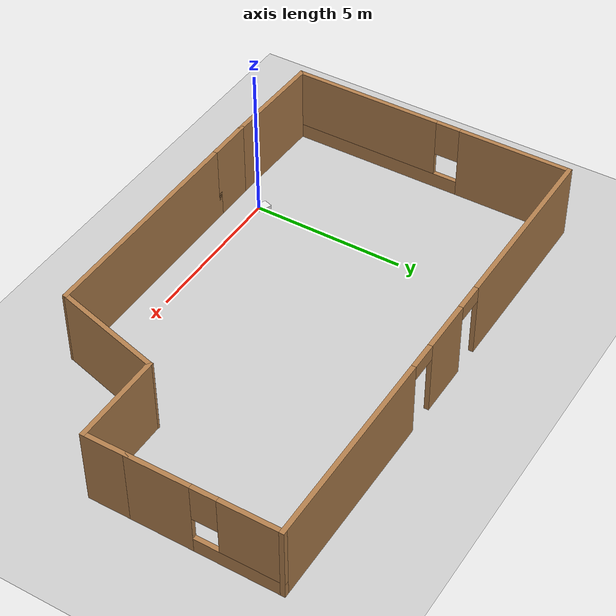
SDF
<sdf version="1.7">
 <world name="default">
  <light name="sun" type="directional">
   <pose>0 0 10 0 -0 0</pose>
   <diffuse>0.8 0.8 0.8 1</diffuse>
   <specular>0.2 0.2 0.2 1</specular>
   <attenuation>
    <range>1000</range>
    <constant>0.9</constant>
    <linear>0.01</linear>
    <quadratic>0.001</quadratic>
   </attenuation>
   <direction>-0.5 0.1 -0.9</direction>
   <spot><inner_angle>0</inner_angle><outer_angle>0</outer_angle><falloff>0</falloff></spot>
  </light>
  <model name="ground_plane">
   <static>1</static>
   <link name="link">
    <collision name="collision">
     <geometry><plane><normal>0 0 1</normal><size>100 100</size></plane></geometry>
     <surface>
      <contact><collide_bitmask>65535</collide_bitmask></contact>
      <friction><ode><mu>100</mu><mu2>50</mu2></ode></friction>
     </surface>
    </collision>
    <visual name="visual">
     <cast_shadows>0</cast_shadows>
     <geometry><plane><normal>0 0 1</normal><size>100 100</size></plane></geometry>
     <material>
      <script><uri>file://media/materials/scripts/gazebo.material</uri><name>Gazebo/Grey</name></script>
     </material>
    </visual>
   </link>
  </model>
  <gravity>0 0 -9.8</gravity>
  <magnetic_field>6e-06 2.3e-05 -4.2e-05</magnetic_field>
  <atmosphere type="adiabatic"/>
  <physics type="ode">
   <max_step_size>0.001</max_step_size>
   <real_time_factor>1</real_time_factor>
   <real_time_update_rate>1000</real_time_update_rate>
  </physics>
  <scene><ambient>0.4 0.4 0.4 1</ambient><background>0.7 0.7 0.7 1</background><shadows>1</shadows></scene>
  <spherical_coordinates>
   <surface_model>EARTH_WGS84</surface_model>
   <latitude_deg>0</latitude_deg>
   <longitude_deg>0</longitude_deg>
   <elevation>0</elevation>
   <heading_deg>0</heading_deg>
  </spherical_coordinates>
  <model name="my_bot">
   <link name="base_link">
    <inertial>
     <pose>0.065 0 0.0625 0 -0 0</pose>
     <mass>0.6</mass>
     <inertia>
      <ixx>0.00525625</ixx>
      <ixy>0</ixy>
      <ixz>0.0005625</ixz>
      <iyy>0.00593125</iyy>
      <iyz>0</iyz>
      <izz>0.008275</izz>
     </inertia>
    </inertial>
    <collision name="base_link_fixed_joint_lump__chassis_collision">
     <pose>0.05 0 0.075 0 -0 0</pose>
     <geometry><box><size>0.3 0.3 0.15</size></box></geometry>
    </collision>
    <collision name="base_link_fixed_joint_lump__caster_wheel_collision_1">
     <pose>0.14 0 0 0 -0 0</pose>
     <geometry><sphere><radius>0.05</radius></sphere></geometry>
     <surface><friction><ode><mu>0.001</mu><mu2>0.001</mu2></ode></friction></surface>
    </collision>
    <visual name="base_link_fixed_joint_lump__chassis_visual">
     <pose>0.05 0 0.075 0 -0 0</pose>
     <geometry><box><size>0.3 0.3 0.15</size></box></geometry>
     <material>
      <script><name>Gazebo/White</name><uri>file://media/materials/scripts/gazebo.material</uri></script>
     </material>
    </visual>
    <visual name="base_link_fixed_joint_lump__caster_wheel_visual_1">
     <pose>0.14 0 0 0 -0 0</pose>
     <geometry><sphere><radius>0.05</radius></sphere></geometry>
     <material>
      <script><name>Gazebo/Black</name><uri>file://media/materials/scripts/gazebo.material</uri></script>
     </material>
    </visual>
   </link>
   <joint name="left_wheel_joint" type="revolute">
    <pose relative_to="base_link">0 0.175 0 -1.5708 0 0</pose>
    <parent>base_link</parent>
    <child>left_wheel</child>
    <axis>
     <xyz>0 0 1</xyz>
     <limit><lower>-1e+16</lower><upper>1e+16</upper></limit>
     <dynamics><spring_reference>0</spring_reference><spring_stiffness>0</spring_stiffness></dynamics>
    </axis>
   </joint>
   <link name="left_wheel">
    <pose relative_to="left_wheel_joint">0 0 0 0 -0 0</pose>
    <inertial>
     <mass>0.1</mass>
     <inertia>
      <ixx>7.58333e-05</ixx>
      <ixy>0</ixy>
      <ixz>0</ixz>
      <iyy>7.58333e-05</iyy>
      <iyz>0</iyz>
      <izz>0.000125</izz>
     </inertia>
    </inertial>
    <collision name="left_wheel_collision">
     <geometry><cylinder><length>0.04</length><radius>0.05</radius></cylinder></geometry>
    </collision>
    <visual name="left_wheel_visual">
     <geometry><cylinder><length>0.04</length><radius>0.05</radius></cylinder></geometry>
     <material>
      <script><name>Gazebo/Blue</name><uri>file://media/materials/scripts/gazebo.material</uri></script>
     </material>
    </visual>
   </link>
   <joint name="right_wheel_joint" type="revolute">
    <pose relative_to="base_link">0 -0.175 0 1.5708 -0 0</pose>
    <parent>base_link</parent>
    <child>right_wheel</child>
    <axis>
     <xyz>0 0 -1</xyz>
     <limit><lower>-1e+16</lower><upper>1e+16</upper></limit>
     <dynamics><spring_reference>0</spring_reference><spring_stiffness>0</spring_stiffness></dynamics>
    </axis>
   </joint>
   <link name="right_wheel">
    <pose relative_to="right_wheel_joint">0 0 0 0 -0 0</pose>
    <inertial>
     <mass>0.1</mass>
     <inertia>
      <ixx>7.58333e-05</ixx>
      <ixy>0</ixy>
      <ixz>0</ixz>
      <iyy>7.58333e-05</iyy>
      <iyz>0</iyz>
      <izz>0.000125</izz>
     </inertia>
    </inertial>
    <collision name="right_wheel_collision">
     <geometry><cylinder><length>0.04</length><radius>0.05</radius></cylinder></geometry>
    </collision>
    <visual name="right_wheel_visual">
     <geometry><cylinder><length>0.04</length><radius>0.05</radius></cylinder></geometry>
     <material>
      <script><name>Gazebo/Blue</name><uri>file://media/materials/scripts/gazebo.material</uri></script>
     </material>
    </visual>
   </link>
   <static>0</static>
   <plugin name="diff_drive" filename="libgazebo_ros_diff_drive.so">
    <left_joint>left_wheel_joint</left_joint>
    <right_joint>right_wheel_joint</right_joint>
    <wheel_separation>0.35</wheel_separation>
    <wheel_diameter>0.1</wheel_diameter>
    <max_wheel_torque>200</max_wheel_torque>
    <max_wheel_acceleration>10.0</max_wheel_acceleration>
    <odometry_frame>odom</odometry_frame>
    <robot_base_frame>base_link</robot_base_frame>
    <publish_odom>1</publish_odom>
    <publish_odom_tf>1</publish_odom_tf>
    <publish_wheel_tf>1</publish_wheel_tf>
   </plugin>
   <pose>-0.03154 0.152846 0.05 0 1.7e-05 1.25731</pose>
  </model>
  <model name="my_building">
   <pose>4.08151 3.82805 0 0 -0 0</pose>
   <link name="Wall_1">
    <collision name="Wall_1_Collision">
     <geometry><box><size>1.5 0.15 2.5</size></box></geometry>
     <pose>0 0 1.25 0 -0 0</pose>
    </collision>
    <visual name="Wall_1_Visual">
     <pose>0 0 1.25 0 -0 0</pose>
     <geometry><box><size>1.5 0.15 2.5</size></box></geometry>
     <material>
      <script><uri>file://media/materials/scripts/gazebo.material</uri><name>Gazebo/Wood</name></script>
      <ambient>1 1 1 1</ambient>
     </material>
     <meta><layer>0</layer></meta>
    </visual>
    <pose>-3.8809 -4.70524 0 0 -0 0</pose>
   </link>
   <link name="Wall_2">
    <collision name="Wall_2_Collision">
     <geometry><box><size>7.5 0.15 2.5</size></box></geometry>
     <pose>0 0 1.25 0 -0 0</pose>
    </collision>
    <visual name="Wall_2_Visual">
     <pose>0 0 1.25 0 -0 0</pose>
     <geometry><box><size>7.5 0.15 2.5</size></box></geometry>
     <material>
      <script><uri>file://media/materials/scripts/gazebo.material</uri><name>Gazebo/Wood</name></script>
      <ambient>1 1 1 1</ambient>
     </material>
     <meta><layer>0</layer></meta>
    </visual>
    <pose>0.469102 -4.70524 0 0 -0 0</pose>
   </link>
   <link name="Wall_3">
    <collision name="Wall_3_Collision">
     <geometry><box><size>3.75 0.15 2.5</size></box></geometry>
     <pose>0 0 1.25 0 -0 0</pose>
    </collision>
    <visual name="Wall_3_Visual">
     <pose>0 0 1.25 0 -0 0</pose>
     <geometry><box><size>3.75 0.15 2.5</size></box></geometry>
     <material>
      <script><uri>file://media/materials/scripts/gazebo.material</uri><name>Gazebo/Wood</name></script>
      <ambient>1 1 1 1</ambient>
     </material>
     <meta><layer>0</layer></meta>
    </visual>
    <pose>4.60998 -2.96657 0 0 -0 1.309</pose>
   </link>
   <link name="Wall_4">
    <collision name="Wall_4_Collision">
     <geometry><box><size>3 0.15 2.5</size></box></geometry>
     <pose>0 0 1.25 0 -0 0</pose>
    </collision>
    <visual name="Wall_4_Visual">
     <pose>0 0 1.25 0 -0 0</pose>
     <geometry><box><size>3 0.15 2.5</size></box></geometry>
     <material>
      <script><uri>file://media/materials/scripts/gazebo.material</uri><name>Gazebo/Wood</name></script>
      <ambient>1 1 1 1</ambient>
     </material>
     <meta><layer>0</layer></meta>
    </visual>
    <pose>6.50085 -1.22791 0 0 -0 0</pose>
   </link>
   <link name="Wall_5">
    <collision name="Wall_5_Collision">
     <geometry><box><size>1.5 0.15 2.5</size></box></geometry>
     <pose>0 0 1.25 0 -0 0</pose>
    </collision>
    <visual name="Wall_5_Visual">
     <pose>0 0 1.25 0 -0 0</pose>
     <geometry><box><size>1.5 0.15 2.5</size></box></geometry>
     <material>
      <script><uri>file://media/materials/scripts/gazebo.material</uri><name>Gazebo/Wood</name></script>
      <ambient>1 1 1 1</ambient>
     </material>
     <meta><layer>0</layer></meta>
    </visual>
    <pose>7.92585 -0.552906 0 0 -0 1.5708</pose>
   </link>
   <link name="Wall_6">
    <pose>7.92585 2.42209 0 0 -0 1.5708</pose>
    <visual name="Wall_6_Visual_0">
     <pose>-1.37756 0 1.25 0 -0 0</pose>
     <geometry><box><size>1.99487 0.15 2.5</size></box></geometry>
     <material>
      <script><uri>file://media/materials/scripts/gazebo.material</uri><name>Gazebo/Wood</name></script>
      <ambient>1 1 1 1</ambient>
     </material>
     <meta><layer>0</layer></meta>
    </visual>
    <collision name="Wall_6_Collision_0">
     <geometry><box><size>1.99487 0.15 2.5</size></box></geometry>
     <pose>-1.37756 0 1.25 0 -0 0</pose>
    </collision>
    <visual name="Wall_6_Visual_1">
     <pose>0.997437 0 0.25 0 -0 0</pose>
     <geometry><box><size>2.75513 0.15 0.5</size></box></geometry>
     <material>
      <script><uri>file://media/materials/scripts/gazebo.material</uri><name>Gazebo/Wood</name></script>
      <ambient>1 1 1 1</ambient>
     </material>
     <meta><layer>0</layer></meta>
    </visual>
    <collision name="Wall_6_Collision_1">
     <geometry><box><size>2.75513 0.15 0.5</size></box></geometry>
     <pose>0.997437 0 0.25 0 -0 0</pose>
    </collision>
    <visual name="Wall_6_Visual_2">
     <pose>1.39744 0 1.5 0 -0 0</pose>
     <geometry><box><size>1.95513 0.15 2</size></box></geometry>
     <material>
      <script><uri>file://media/materials/scripts/gazebo.material</uri><name>Gazebo/Wood</name></script>
      <ambient>1 1 1 1</ambient>
     </material>
     <meta><layer>0</layer></meta>
    </visual>
    <collision name="Wall_6_Collision_2">
     <geometry><box><size>1.95513 0.15 2</size></box></geometry>
     <pose>1.39744 0 1.5 0 -0 0</pose>
    </collision>
    <visual name="Wall_6_Visual_3">
     <pose>0.019875 0 1.9 0 -0 0</pose>
     <geometry><box><size>0.8 0.15 1.2</size></box></geometry>
     <material>
      <script><uri>file://media/materials/scripts/gazebo.material</uri><name>Gazebo/Wood</name></script>
      <ambient>1 1 1 1</ambient>
     </material>
     <meta><layer>0</layer></meta>
    </visual>
    <collision name="Wall_6_Collision_3">
     <geometry><box><size>0.8 0.15 1.2</size></box></geometry>
     <pose>0.019875 0 1.9 0 -0 0</pose>
    </collision>
   </link>
   <link name="Wall_7">
    <pose>0.000851 4.72209 0 0 -0 3.14159</pose>
    <visual name="Wall_7_Visual_0">
     <pose>-4.76587 0 1.25 0 -0 0</pose>
     <geometry><box><size>6.46826 0.15 2.5</size></box></geometry>
     <material>
      <script><uri>file://media/materials/scripts/gazebo.material</uri><name>Gazebo/Wood</name></script>
      <ambient>1 1 1 1</ambient>
     </material>
     <meta><layer>0</layer></meta>
    </visual>
    <collision name="Wall_7_Collision_0">
     <geometry><box><size>6.46826 0.15 2.5</size></box></geometry>
     <pose>-4.76587 0 1.25 0 -0 0</pose>
    </collision>
    <visual name="Wall_7_Visual_1">
     <pose>0.229067 0 1.25 0 -0 0</pose>
     <geometry><box><size>1.72162 0.15 2.5</size></box></geometry>
     <material>
      <script><uri>file://media/materials/scripts/gazebo.material</uri><name>Gazebo/Wood</name></script>
      <ambient>1 1 1 1</ambient>
     </material>
     <meta><layer>0</layer></meta>
    </visual>
    <collision name="Wall_7_Collision_1">
     <geometry><box><size>1.72162 0.15 2.5</size></box></geometry>
     <pose>0.229067 0 1.25 0 -0 0</pose>
    </collision>
    <visual name="Wall_7_Visual_2">
     <pose>4.99494 0 1.25 0 -0 0</pose>
     <geometry><box><size>6.01012 0.15 2.5</size></box></geometry>
     <material>
      <script><uri>file://media/materials/scripts/gazebo.material</uri><name>Gazebo/Wood</name></script>
      <ambient>1 1 1 1</ambient>
     </material>
     <meta><layer>0</layer></meta>
    </visual>
    <collision name="Wall_7_Collision_2">
     <geometry><box><size>6.01012 0.15 2.5</size></box></geometry>
     <pose>4.99494 0 1.25 0 -0 0</pose>
    </collision>
    <visual name="Wall_7_Visual_3">
     <pose>-1.08174 0 2.25 0 -0 0</pose>
     <geometry><box><size>0.9 0.15 0.5</size></box></geometry>
     <material>
      <script><uri>file://media/materials/scripts/gazebo.material</uri><name>Gazebo/Wood</name></script>
      <ambient>1 1 1 1</ambient>
     </material>
     <meta><layer>0</layer></meta>
    </visual>
    <collision name="Wall_7_Collision_3">
     <geometry><box><size>0.9 0.15 0.5</size></box></geometry>
     <pose>-1.08174 0 2.25 0 -0 0</pose>
    </collision>
    <visual name="Wall_7_Visual_4">
     <pose>1.53988 0 2.25 0 -0 0</pose>
     <geometry><box><size>0.9 0.15 0.5</size></box></geometry>
     <material>
      <script><uri>file://media/materials/scripts/gazebo.material</uri><name>Gazebo/Wood</name></script>
      <ambient>1 1 1 1</ambient>
     </material>
     <meta><layer>0</layer></meta>
    </visual>
    <collision name="Wall_7_Collision_4">
     <geometry><box><size>0.9 0.15 0.5</size></box></geometry>
     <pose>1.53988 0 2.25 0 -0 0</pose>
    </collision>
   </link>
   <link name="Wall_8">
    <pose>-7.92415 0.047094 0 0 -0 -1.5708</pose>
    <visual name="Wall_8_Visual_0">
     <pose>-2.88965 0 1.25 0 -0 0</pose>
     <geometry><box><size>3.72071 0.15 2.5</size></box></geometry>
     <material>
      <script><uri>file://media/materials/scripts/gazebo.material</uri><name>Gazebo/Wood</name></script>
      <ambient>1 1 1 1</ambient>
     </material>
     <meta><layer>0</layer></meta>
    </visual>
    <collision name="Wall_8_Collision_0">
     <geometry><box><size>3.72071 0.15 2.5</size></box></geometry>
     <pose>-2.88965 0 1.25 0 -0 0</pose>
    </collision>
    <visual name="Wall_8_Visual_1">
     <pose>1.86035 0 0.25 0 -0 0</pose>
     <geometry><box><size>5.77929 0.15 0.5</size></box></geometry>
     <material>
      <script><uri>file://media/materials/scripts/gazebo.material</uri><name>Gazebo/Wood</name></script>
      <ambient>1 1 1 1</ambient>
     </material>
     <meta><layer>0</layer></meta>
    </visual>
    <collision name="Wall_8_Collision_1">
     <geometry><box><size>5.77929 0.15 0.5</size></box></geometry>
     <pose>1.86035 0 0.25 0 -0 0</pose>
    </collision>
    <visual name="Wall_8_Visual_2">
     <pose>2.26035 0 1.5 0 -0 0</pose>
     <geometry><box><size>4.97929 0.15 2</size></box></geometry>
     <material>
      <script><uri>file://media/materials/scripts/gazebo.material</uri><name>Gazebo/Wood</name></script>
      <ambient>1 1 1 1</ambient>
     </material>
     <meta><layer>0</layer></meta>
    </visual>
    <collision name="Wall_8_Collision_2">
     <geometry><box><size>4.97929 0.15 2</size></box></geometry>
     <pose>2.26035 0 1.5 0 -0 0</pose>
    </collision>
    <visual name="Wall_8_Visual_3">
     <pose>-0.629292 0 1.9 0 -0 0</pose>
     <geometry><box><size>0.8 0.15 1.2</size></box></geometry>
     <material>
      <script><uri>file://media/materials/scripts/gazebo.material</uri><name>Gazebo/Wood</name></script>
      <ambient>1 1 1 1</ambient>
     </material>
     <meta><layer>0</layer></meta>
    </visual>
    <collision name="Wall_8_Collision_3">
     <geometry><box><size>0.8 0.15 1.2</size></box></geometry>
     <pose>-0.629292 0 1.9 0 -0 0</pose>
    </collision>
   </link>
   <link name="Wall_9">
    <collision name="Wall_9_Collision">
     <geometry><box><size>3.51914 0.15 2.5</size></box></geometry>
     <pose>0 0 1.25 0 -0 0</pose>
    </collision>
    <visual name="Wall_9_Visual">
     <pose>0 0 1.25 0 -0 0</pose>
     <geometry><box><size>3.51914 0.15 2.5</size></box></geometry>
     <material>
      <script><uri>file://media/materials/scripts/gazebo.material</uri><name>Gazebo/Wood</name></script>
      <ambient>1 1 1 1</ambient>
     </material>
     <meta><layer>0</layer></meta>
    </visual>
    <pose>-6.24002 -4.66657 0 0 -0 -0.022955</pose>
   </link>
   <static>1</static>
  </model>
 </world>
</sdf>
